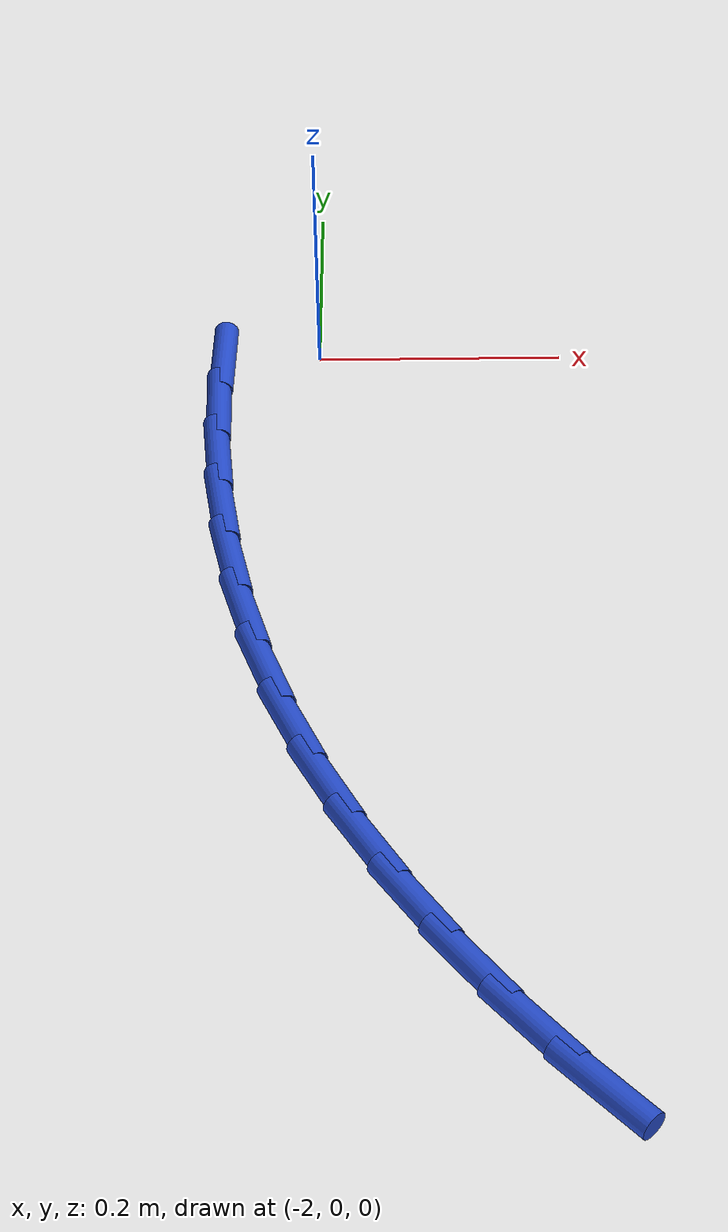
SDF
<sdf version="1.6">
 <world name="default">
  <model name="ground_plane">
   <static>1</static>
   <link name="link">
    <collision name="collision">
     <geometry><plane><normal>0 0 1</normal><size>100 100</size></plane></geometry>
     <surface><friction><ode><mu>100</mu><mu2>50</mu2></ode></friction></surface>
    </collision>
    <visual name="visual">
     <cast_shadows>0</cast_shadows>
     <geometry><plane><normal>0 0 1</normal><size>100 100</size></plane></geometry>
     <material>
      <script><uri>file://media/materials/scripts/gazebo.material</uri><name>Gazebo/WhiteGlow</name></script>
     </material>
    </visual>
   </link>
  </model>
  <model name="line">
   <link name="link_55">
    <pose>-2.0799537660628244 -0.013501598227123206 0.01 0 1.57 1.5505472130749312</pose>
    <collision name="collision">
     <geometry><cylinder><radius>0.01</radius><length>0.08</length></cylinder></geometry>
    </collision>
    <visual name="visual">
     <material>
      <script><name>Gazebo/Blue</name><uri>file://media/materials/scripts/gazebo.material</uri></script>
     </material>
     <geometry><cylinder><radius>0.01</radius><length>0.08</length></cylinder></geometry>
    </visual>
   </link>
   <link name="link_56">
    <pose>-2.0811835080560237 -0.07422395526277639 0.01 0 1.57 -1.5349846804512335</pose>
    <collision name="collision">
     <geometry><cylinder><radius>0.01</radius><length>0.08</length></cylinder></geometry>
    </collision>
    <visual name="visual">
     <material>
      <script><name>Gazebo/Blue</name><uri>file://media/materials/scripts/gazebo.material</uri></script>
     </material>
     <geometry><cylinder><radius>0.01</radius><length>0.08</length></cylinder></geometry>
    </visual>
   </link>
   <link name="link_57">
    <pose>-2.0790170921590962 -0.13469282265090304 0.01 0 1.57 -1.4767350790501348</pose>
    <collision name="collision">
     <geometry><cylinder><radius>0.01</radius><length>0.08</length></cylinder></geometry>
    </collision>
    <visual name="visual">
     <material>
      <script><name>Gazebo/Blue</name><uri>file://media/materials/scripts/gazebo.material</uri></script>
     </material>
     <geometry><cylinder><radius>0.01</radius><length>0.08</length></cylinder></geometry>
    </visual>
   </link>
   <link name="link_58">
    <pose>-2.0733610400863127 -0.1946469662123258 0.01 0 1.57 -1.4159220648698458</pose>
    <collision name="collision">
     <geometry><cylinder><radius>0.01</radius><length>0.08</length></cylinder></geometry>
    </collision>
    <visual name="visual">
     <material>
      <script><name>Gazebo/Blue</name><uri>file://media/materials/scripts/gazebo.material</uri></script>
     </material>
     <geometry><cylinder><radius>0.01</radius><length>0.08</length></cylinder></geometry>
    </visual>
   </link>
   <link name="link_59">
    <pose>-2.064121873551945 -0.25382515176787057 0.01 0 1.57 -1.352200506348456</pose>
    <collision name="collision">
     <geometry><cylinder><radius>0.01</radius><length>0.08</length></cylinder></geometry>
    </collision>
    <visual name="visual">
     <material>
      <script><name>Gazebo/Blue</name><uri>file://media/materials/scripts/gazebo.material</uri></script>
     </material>
     <geometry><cylinder><radius>0.01</radius><length>0.08</length></cylinder></geometry>
    </visual>
   </link>
   <link name="link_60">
    <pose>-2.0512061142702662 -0.3119661451383603 0.01 0 1.57 -1.2852723612935337</pose>
    <collision name="collision">
     <geometry><cylinder><radius>0.01</radius><length>0.08</length></cylinder></geometry>
    </collision>
    <visual name="visual">
     <material>
      <script><name>Gazebo/Blue</name><uri>file://media/materials/scripts/gazebo.material</uri></script>
     </material>
     <geometry><cylinder><radius>0.01</radius><length>0.08</length></cylinder></geometry>
    </visual>
   </link>
   <link name="link_61">
    <pose>-2.0345202839555467 -0.36880871214462063 0.01 0 1.57 -1.2153459245799245</pose>
    <collision name="collision">
     <geometry><cylinder><radius>0.01</radius><length>0.08</length></cylinder></geometry>
    </collision>
    <visual name="visual">
     <material>
      <script><name>Gazebo/Blue</name><uri>file://media/materials/scripts/gazebo.material</uri></script>
     </material>
     <geometry><cylinder><radius>0.01</radius><length>0.08</length></cylinder></geometry>
    </visual>
   </link>
   <link name="link_62">
    <pose>-2.0139918945041955 -0.42410887613493126 0.01 0 1.57 -1.1463073783005033</pose>
    <collision name="collision">
     <geometry><cylinder><radius>0.01</radius><length>0.08</length></cylinder></geometry>
    </collision>
    <visual name="visual">
     <material>
      <script><name>Gazebo/Blue</name><uri>file://media/materials/scripts/gazebo.material</uri></script>
     </material>
     <geometry><cylinder><radius>0.01</radius><length>0.08</length></cylinder></geometry>
    </visual>
   </link>
   <link name="link_63">
    <pose>-1.9897357886195757 -0.4777766784895957 0.01 0 1.57 -1.0804935034336451</pose>
    <collision name="collision">
     <geometry><cylinder><radius>0.01</radius><length>0.08</length></cylinder></geometry>
    </collision>
    <visual name="visual">
     <material>
      <script><name>Gazebo/Blue</name><uri>file://media/materials/scripts/gazebo.material</uri></script>
     </material>
     <geometry><cylinder><radius>0.01</radius><length>0.08</length></cylinder></geometry>
    </visual>
   </link>
   <link name="link_64">
    <pose>-1.9619652665783476 -0.5298031095898986 0.01 0 1.57 -1.0181388106271747</pose>
    <collision name="collision">
     <geometry><cylinder><radius>0.01</radius><length>0.08</length></cylinder></geometry>
    </collision>
    <visual name="visual">
     <material>
      <script><name>Gazebo/Blue</name><uri>file://media/materials/scripts/gazebo.material</uri></script>
     </material>
     <geometry><cylinder><radius>0.01</radius><length>0.08</length></cylinder></geometry>
    </visual>
   </link>
   <link name="link_65">
    <pose>-1.9308945040398875 -0.5801798795317634 0.01 0 1.57 -0.9593316155145944</pose>
    <collision name="collision">
     <geometry><cylinder><radius>0.01</radius><length>0.08</length></cylinder></geometry>
    </collision>
    <visual name="visual">
     <material>
      <script><name>Gazebo/Blue</name><uri>file://media/materials/scripts/gazebo.material</uri></script>
     </material>
     <geometry><cylinder><radius>0.01</radius><length>0.08</length></cylinder></geometry>
    </visual>
   </link>
   <link name="link_66">
    <pose>-1.8967376766635735 -0.6288986984111132 0.01 0 1.57 -0.9040544492596018</pose>
    <collision name="collision">
     <geometry><cylinder><radius>0.01</radius><length>0.08</length></cylinder></geometry>
    </collision>
    <visual name="visual">
     <material>
      <script><name>Gazebo/Blue</name><uri>file://media/materials/scripts/gazebo.material</uri></script>
     </material>
     <geometry><cylinder><radius>0.01</radius><length>0.08</length></cylinder></geometry>
    </visual>
   </link>
   <link name="link_67">
    <pose>-1.859708960108784 -0.6759512763238698 0.01 0 1.57 -0.8522080275441772</pose>
    <collision name="collision">
     <geometry><cylinder><radius>0.01</radius><length>0.08</length></cylinder></geometry>
    </collision>
    <visual name="visual">
     <material>
      <script><name>Gazebo/Blue</name><uri>file://media/materials/scripts/gazebo.material</uri></script>
     </material>
     <geometry><cylinder><radius>0.01</radius><length>0.08</length></cylinder></geometry>
    </visual>
   </link>
   <link name="link_68">
    <pose>-1.820022530034896 -0.7213293233659568 0.01 0 1.57 -0.8036338905621465</pose>
    <collision name="collision">
     <geometry><cylinder><radius>0.01</radius><length>0.08</length></cylinder></geometry>
    </collision>
    <visual name="visual">
     <material>
      <script><name>Gazebo/Blue</name><uri>file://media/materials/scripts/gazebo.material</uri></script>
     </material>
     <geometry><cylinder><radius>0.01</radius><length>0.08</length></cylinder></geometry>
    </visual>
   </link>
  </model>
 </world>
</sdf>
